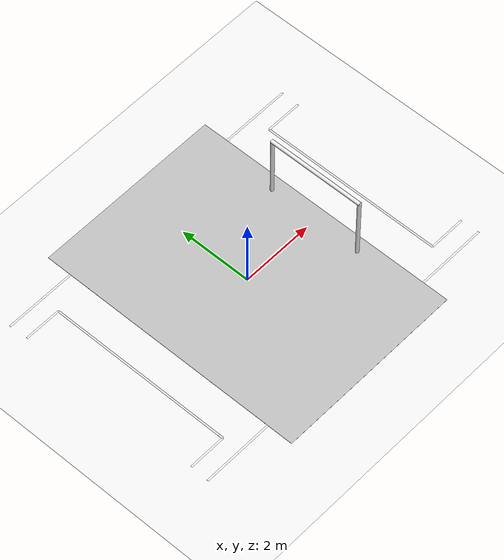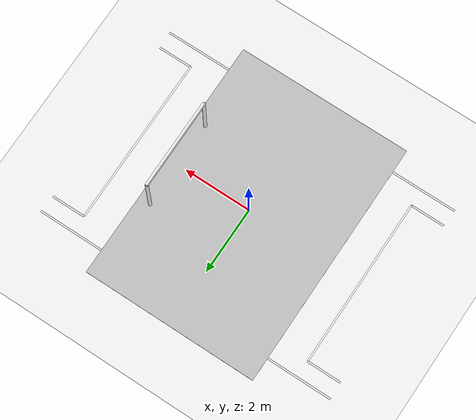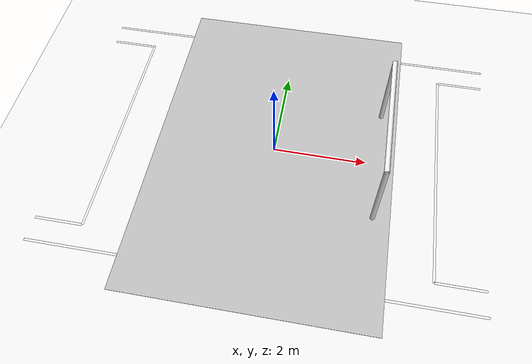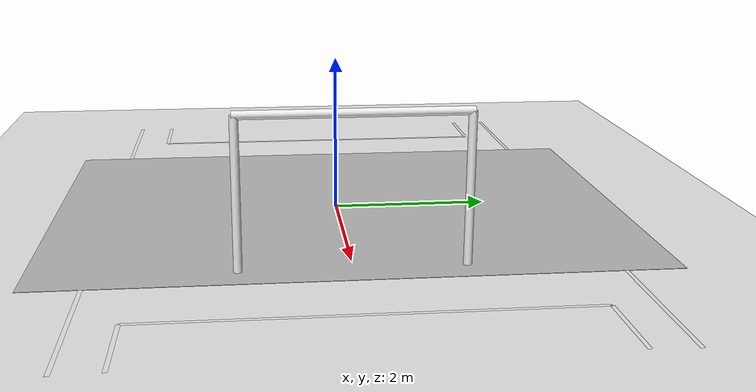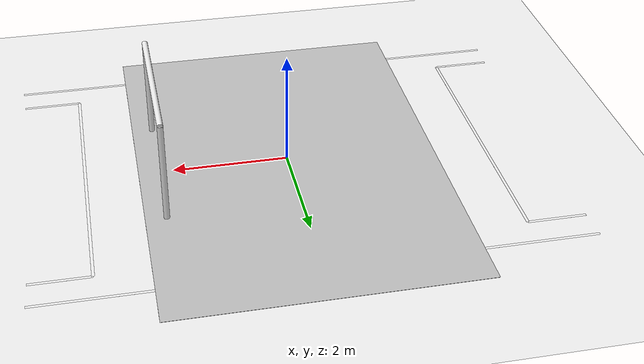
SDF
<sdf version="1.6">
 <world name="default">
  <light name="sun" type="directional">
   <pose>0 0 10 0 -0 0</pose>
   <diffuse>0.8 0.8 0.8 1</diffuse>
   <specular>0.2 0.2 0.2 1</specular>
   <attenuation>
    <range>1000</range>
    <constant>0.9</constant>
    <linear>0.01</linear>
    <quadratic>0.001</quadratic>
   </attenuation>
   <direction>-0.5 0.1 -0.9</direction>
  </light>
  <model name="ground_plane">
   <static>false</static>
   <link name="link">
    <collision name="collision">
     <geometry><plane><normal>0 0 1</normal><size>100 100</size></plane></geometry>
     <surface><friction><ode><mu>100</mu><mu2>50</mu2></ode></friction></surface>
    </collision>
    <inertial>
     <mass>0</mass>
     <inertia><ixx>0.01</ixx><ixy>0.01</ixy><ixz>0.01</ixz><iyy>0.01</iyy><iyz>0.01</iyz><izz>0.01</izz></inertia>
    </inertial>
    <visual name="visual">
     <cast_shadows>0</cast_shadows>
     <geometry><plane><normal>0 0 1</normal><size>100 100</size></plane></geometry>
     <material>
      <script><uri>file://media/materials/scripts/gazebo.material</uri><name>Gazebo/White</name></script>
     </material>
    </visual>
    <kinematic>1</kinematic>
   </link>
  </model>
  <gravity>0 0 -9.8</gravity>
  <physics name="default_physics" default="0" type="ode">
   <max_step_size>0.001</max_step_size>
   <real_time_factor>1</real_time_factor>
   <real_time_update_rate>1000</real_time_update_rate>
  </physics>
  <scene>
   <ambient>0.4 0.4 0.4 1</ambient>
   <background>0.1 0.1 0.1 1</background>
   <shadows>1</shadows>
   <sky><clouds><speed>12</speed></clouds></sky>
  </scene>
  <include><uri>model://Test Field</uri></include>
  <include><uri>model://Test Goal</uri><pose>2.25 0 0 0 0 0</pose></include>
 </world>
</sdf>

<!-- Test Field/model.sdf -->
<sdf version='1.6'>
    <model name='Test Field'>
        <static>false</static>
        <link name='field'>
            <pose frame=''>0 0 0.01 0 -0 0</pose>
            <collision name='collision'>
                <geometry>
                    <plane>
                        <normal>0 0 1</normal>
                        <size>5.2 7.4</size>
                    </plane>
                </geometry>
                <surface>
                    <friction>
                        <ode>
                            <mu>100</mu>
                            <mu2>50</mu2>
                        </ode>
                        <torsional>
                            <ode/>
                        </torsional>
                    </friction>
                    <contact>
                        <ode/>
                    </contact>
                    <bounce/>
                </surface>
                <max_contacts>10</max_contacts>
            </collision>
            <inertial>
                <mass>0</mass>
                <inertia>
                    <ixx>0</ixx>
                    <ixy>0</ixy>
                    <ixz>0</ixz>
                    <iyy>0</iyy>
                    <iyz>0</iyz>
                    <izz>0</izz>
                </inertia>
            </inertial>
            <visual name='carpet'>
                <cast_shadows>0</cast_shadows>
                <geometry>
                    <plane>
                        <normal>0 0 1</normal>
                        <size>5.2 7.4</size>
                    </plane>
                </geometry>
                <material>
                    <script>
                        <uri>model://Test Field/materials/scripts/</uri>
                        <uri>model://Test Field/materials/textures/</uri>
                        <name>RoboCup/Carpet</name>
                    </script>
                </material>
            </visual>
            <visual name='sideline_1'>
                <pose frame=''>0 3 0.001 0 -0 0</pose>
                <cast_shadows>0</cast_shadows>
                <geometry>
                    <plane>
                        <normal>0 0 1</normal>
                        <size>9.05 0.05</size>
                    </plane>
                </geometry>
                <material>
                    <script>
                        <uri>file://media/materials/scripts/gazebo.material</uri>
                        <name>Gazebo/White</name>
                    </script>
                </material>
            </visual>
            <visual name='sideline_2'>
                <pose frame=''>0 -3 0.001 0 -0 0</pose>
                <cast_shadows>0</cast_shadows>
                <geometry>
                    <plane>
                        <normal>0 0 1</normal>
                        <size>9.05 0.05</size>
                    </plane>
                </geometry>
                <material>
                    <script>
                        <uri>file://media/materials/scripts/gazebo.material</uri>
                        <name>Gazebo/White</name>
                    </script>
                </material>
            </visual>
            <visual name='endline_1'>
                <pose frame=''>-2.25 0 0.001 0 -0 0</pose>
                <cast_shadows>0</cast_shadows>
                <geometry>
                    <plane>
                        <normal>0 0 1</normal>
                        <size>0.05 6.05</size>
                    </plane>
                </geometry>
                <material>
                    <script>
                        <uri>file://media/materials/scripts/gazebo.material</uri>
                        <name>Gazebo/White</name>
                    </script>
                </material>
            </visual>
            <visual name='endline_2'>
                <pose frame=''>2.25 0 0.001 0 -0 0</pose>
                <cast_shadows>0</cast_shadows>
                <geometry>
                    <plane>
                        <normal>0 0 1</normal>
                        <size>0.05 6.05</size>
                    </plane>
                </geometry>
                <material>
                    <script>
                        <uri>file://media/materials/scripts/gazebo.material</uri>
                        <name>Gazebo/White</name>
                    </script>
                </material>
            </visual>
            <visual name='area_1_line_a'>
                <pose frame=''>-3.5 0 0.001 0 -0 0</pose>
                <cast_shadows>0</cast_shadows>
                <geometry>
                    <plane>
                        <normal>0 0 1</normal>
                        <size>0.05 5</size>
                    </plane>
                </geometry>
                <material>
                    <script>
                        <uri>file://media/materials/scripts/gazebo.material</uri>
                        <name>Gazebo/White</name>
                    </script>
                </material>
            </visual>
            <visual name='area_2_line_a'>
                <pose frame=''>-4.0 2.5 0.001 0 -0 0</pose>
                <cast_shadows>0</cast_shadows>
                <geometry>
                    <plane>
                        <normal>0 0 1</normal>
                        <size>1 0.05</size>
                    </plane>
                </geometry>
                <material>
                    <script>
                        <uri>file://media/materials/scripts/gazebo.material</uri>
                        <name>Gazebo/White</name>
                    </script>
                </material>
            </visual>
            <visual name='area_3_line_a'>
                <pose frame=''>-4.0 -2.5 0.001 0 -0 0</pose>
                <cast_shadows>0</cast_shadows>
                <geometry>
                    <plane>
                        <normal>0 0 1</normal>
                        <size>1 0.05</size>
                    </plane>
                </geometry>
                <material>
                    <script>
                        <uri>file://media/materials/scripts/gazebo.material</uri>
                        <name>Gazebo/White</name>
                    </script>
                </material>
            </visual>
            <visual name='area_1_line_b'>
                <pose frame=''>3.5 0 0.001 0 -0 0</pose>
                <cast_shadows>0</cast_shadows>
                <geometry>
                    <plane>
                        <normal>0 0 1</normal>
                        <size>0.05 5</size>
                    </plane>
                </geometry>
                <material>
                    <script>
                        <uri>file://media/materials/scripts/gazebo.material</uri>
                        <name>Gazebo/White</name>
                    </script>
                </material>
            </visual>
            <visual name='area_2_line_b'>
                <pose frame=''>4.0 2.5 0.001 0 -0 0</pose>
                <cast_shadows>0</cast_shadows>
                <geometry>
                    <plane>
                        <normal>0 0 1</normal>
                        <size>1 0.05</size>
                    </plane>
                </geometry>
                <material>
                    <script>
                        <uri>file://media/materials/scripts/gazebo.material</uri>
                        <name>Gazebo/White</name>
                    </script>
                </material>
            </visual>
            <visual name='area_3_line_b'>
                <pose frame=''>4.0 -2.5 0.001 0 -0 0</pose>
                <cast_shadows>0</cast_shadows>
                <geometry>
                    <plane>
                        <normal>0 0 1</normal>
                        <size>1 0.05</size>
                    </plane>
                </geometry>
                <material>
                    <script>
                        <uri>file://media/materials/scripts/gazebo.material</uri>
                        <name>Gazebo/White</name>
                    </script>
                </material>
            </visual>
            <visual name='penalty_b'>
                <pose frame=''>2.4 0 0.001 0 -0 0</pose>
                <cast_shadows>0</cast_shadows>
                <geometry>
                    <cylinder>
                        <radius>0.05</radius>
                        <length>0.0005</length>
                    </cylinder>
                </geometry>
                <material>
                    <script>
                        <uri>file://media/materials/scripts/gazebo.material</uri>
                        <name>Gazebo/White</name>
                    </script>
                </material>
            </visual>
            <self_collide>0</self_collide>
            <kinematic>1</kinematic>
        </link>
        <pose frame=''>0.008111 0.030698 0 0 -0 0</pose>
    </model>
</sdf>

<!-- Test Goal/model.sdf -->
<sdf version='1.6'>
    <model name='Test Goal'>
        <static>false</static>
        <link name='left_post'>
            <pose frame=''>0 1.3 0.9 0 -0 0</pose>
            <collision name='collision'>
                <geometry>
                    <cylinder>
                        <radius>0.05</radius>
                        <length>1.8</length>
                    </cylinder>
                </geometry>
                <max_contacts>10</max_contacts>
                <surface>
                    <contact>
                        <ode/>
                    </contact>
                    <bounce/>
                    <friction>
                        <torsional>
                            <ode/>
                        </torsional>
                        <ode/>
                    </friction>
                </surface>
            </collision>
            <inertial>
                <mass>0</mass>
                <inertia>
                    <ixx>0.0</ixx>
                    <ixy>0.0</ixy>
                    <ixz>0.0</ixz>
                    <iyy>0.0</iyy>
                    <iyz>0.0</iyz>
                    <izz>0.0</izz>
                </inertia>
            </inertial>
            <visual name='visual'>
                <geometry>
                    <cylinder>
                        <radius>0.05</radius>
                        <length>1.8</length>
                    </cylinder>
                </geometry>
                <material>
                    <script>
                        <uri>file://media/materials/scripts/gazebo.material</uri>
                        <name>Gazebo/White</name>
                    </script>
                </material>
            </visual>
            <self_collide>0</self_collide>
            <kinematic>1</kinematic>
        </link>
        <link name='right_post'>
            <pose frame=''>0 -1.3 0.9 0 -0 0</pose>
            <inertial>
                <mass>0</mass>
                <inertia>
                    <ixx>0.0</ixx>
                    <ixy>0.0</ixy>
                    <ixz>0.0</ixz>
                    <iyy>0.0</iyy>
                    <iyz>0.0</iyz>
                    <izz>0.0</izz>
                </inertia>
            </inertial>
            <collision name='collision'>
                <geometry>
                    <cylinder>
                        <radius>0.05</radius>
                        <length>1.8</length>
                    </cylinder>
                </geometry>
                <max_contacts>10</max_contacts>
                <surface>
                    <contact>
                        <ode/>
                    </contact>
                    <bounce/>
                    <friction>
                        <torsional>
                            <ode/>
                        </torsional>
                        <ode/>
                    </friction>
                </surface>
            </collision>
            <visual name='visual'>
                <geometry>
                    <cylinder>
                        <radius>0.05</radius>
                        <length>1.8</length>
                    </cylinder>
                </geometry>
                <material>
                    <script>
                        <uri>file://media/materials/scripts/gazebo.material</uri>
                        <name>Gazebo/White</name>
                    </script>
                </material>
            </visual>
            <self_collide>0</self_collide>
            <kinematic>1</kinematic>
        </link>
        <link name='crossbar'>
            <pose frame=''>0 0 1.8 1.57 1.57 0</pose>
            <inertial>
                <mass>0</mass>
                <inertia>
                    <ixx>0.0</ixx>
                    <ixy>0.0</ixy>
                    <ixz>0.0</ixz>
                    <iyy>0.0</iyy>
                    <iyz>0.0</iyz>
                    <izz>0.0</izz>
                </inertia>
            </inertial>
            <collision name='collision'>
                <geometry>
                    <cylinder>
                        <radius>0.05</radius>
                        <length>2.65</length>
                    </cylinder>
                </geometry>
                <max_contacts>10</max_contacts>
                <surface>
                    <contact>
                        <ode/>
                    </contact>
                    <bounce/>
                    <friction>
                        <torsional>
                            <ode/>
                        </torsional>
                        <ode/>
                    </friction>
                </surface>
            </collision>
            <visual name='visual'>
                <geometry>
                    <cylinder>
                        <radius>0.05</radius>
                        <length>2.65</length>
                    </cylinder>
                </geometry>
                <material>
                    <script>
                        <uri>file://media/materials/scripts/gazebo.material</uri>
                        <name>Gazebo/White</name>
                    </script>
                </material>
            </visual>
            <self_collide>0</self_collide>
            <kinematic>1</kinematic>
        </link>
        <pose frame=''>4.38819 -0.032635 0 0 -0 0</pose>
    </model>
</sdf>
